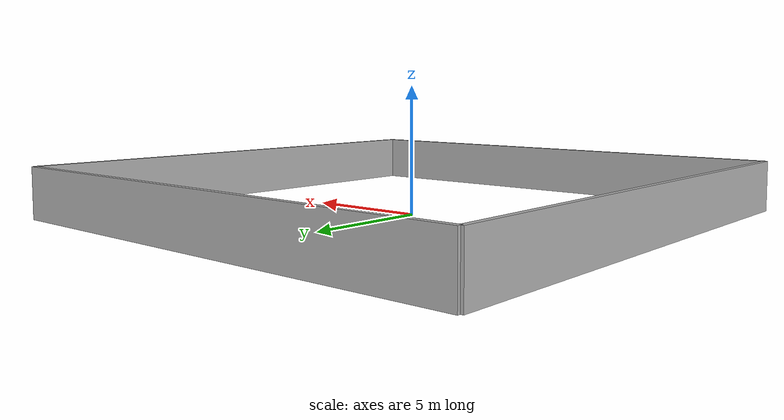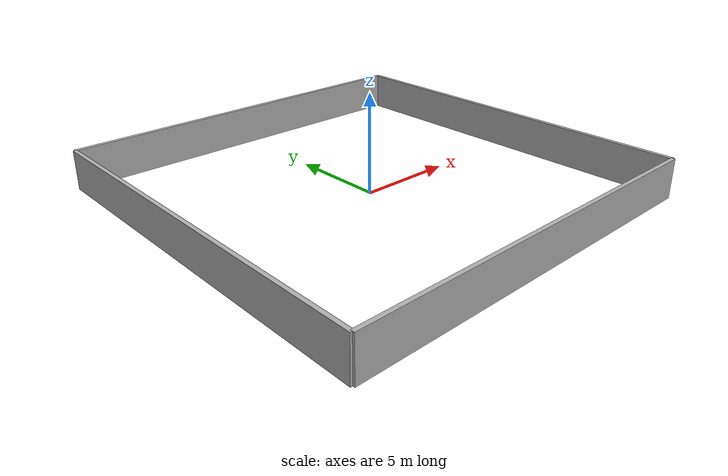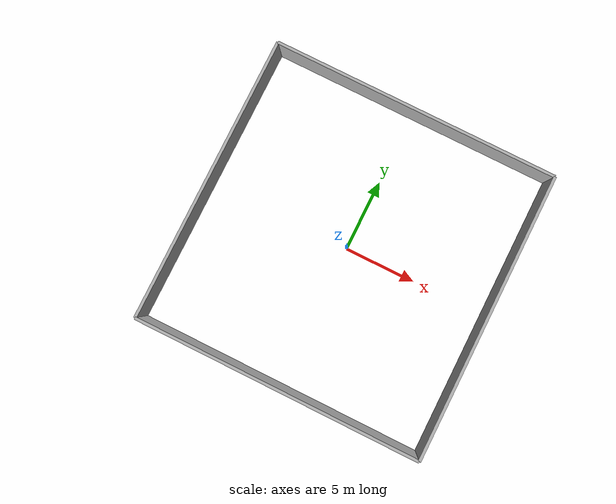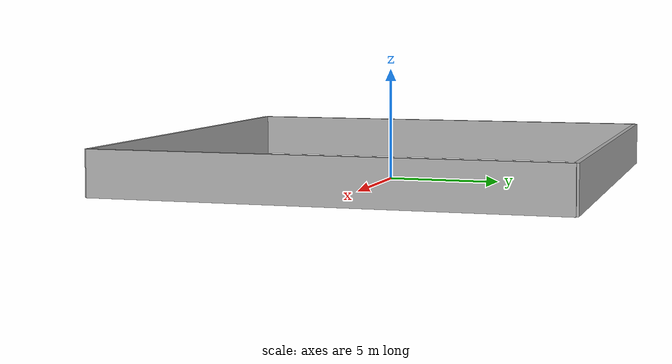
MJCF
<mujoco model="walls">
    <worldbody>
        <!-- Walls for LiDAR testing -->
        <geom name="wall_north" type="box" pos="0 10 1" size="10 0.1 1" rgba="0.7 0.7 0.7 1"/>
        <geom name="wall_south" type="box" pos="0 -10 1" size="10 0.1 1" rgba="0.7 0.7 0.7 1"/>
        <geom name="wall_east" type="box" pos="10 0 1" size="0.1 10 1" rgba="0.7 0.7 0.7 1"/>
        <geom name="wall_west" type="box" pos="-10 0 1" size="0.1 10 1" rgba="0.7 0.7 0.7 1"/>
    </worldbody>
</mujoco>
